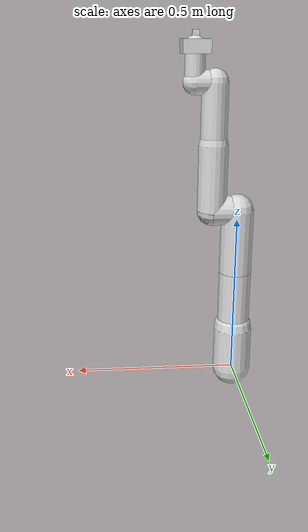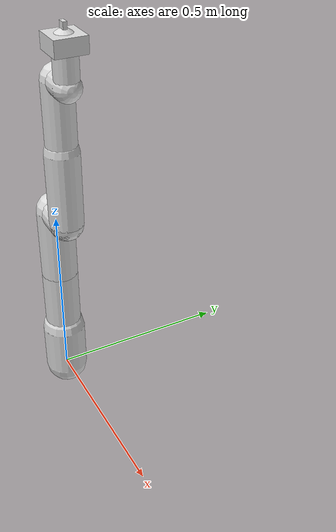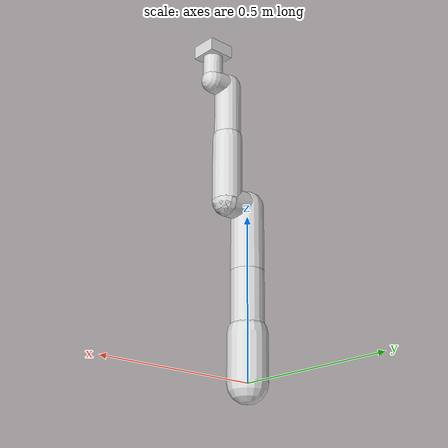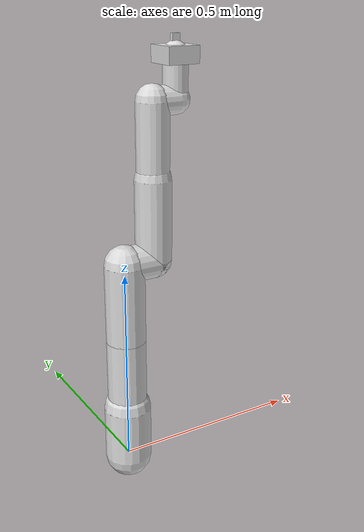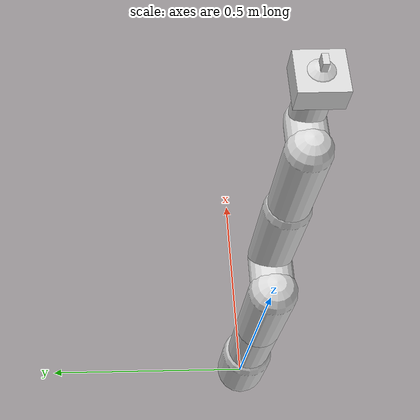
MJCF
<mujoco model="genelab_franka_panda">
  <option timestep="0.002" gravity="0 0 -9.81" integrator="implicitfast"/>
  <default>
    <joint armature="0.1" damping="0.5"/>
    <geom contype="0" conaffinity="0" rgba="0.85 0.85 0.85 1"/>
  </default>
  <worldbody>
    <body name="link0">
      <geom type="capsule" fromto="0 0 0 0 0 0.14" size="0.06"/>
      <body name="link1" pos="0 0 0.14">
        <joint name="panda_joint1" type="hinge" axis="0 0 1" range="-2.8973 2.8973"/>
        <geom type="capsule" fromto="0 0 0 0 0 0.19" size="0.05"/>
        <body name="link2" pos="0 0 0.19">
          <joint name="panda_joint2" type="hinge" axis="0 1 0" range="-1.7628 1.7628"/>
          <geom type="capsule" fromto="0 0 0 0 0 0.20" size="0.05"/>
          <body name="link3" pos="0 0 0.20">
            <joint name="panda_joint3" type="hinge" axis="0 0 1" range="-2.8973 2.8973"/>
            <geom type="capsule" fromto="0 0 0 0.08 0 0" size="0.045"/>
            <body name="link4" pos="0.08 0 0">
              <joint name="panda_joint4" type="hinge" axis="0 1 0" range="-3.0718 -0.0698"/>
              <geom type="capsule" fromto="0 0 0 0 0 0.20" size="0.045"/>
              <body name="link5" pos="0 0 0.20">
                <joint name="panda_joint5" type="hinge" axis="0 0 1" range="-2.8973 2.8973"/>
                <geom type="capsule" fromto="0 0 0 0 0 0.18" size="0.04"/>
                <body name="link6" pos="0 0 0.18">
                  <joint name="panda_joint6" type="hinge" axis="0 1 0" range="-0.0175 3.7525"/>
                  <geom type="capsule" fromto="0 0 0 0.06 0 0" size="0.035"/>
                  <body name="link7" pos="0.06 0 0">
                    <joint name="panda_joint7" type="hinge" axis="0 0 1" range="-2.8973 2.8973"/>
                    <geom type="capsule" fromto="0 0 0 0 0 0.10" size="0.03"/>
                    <body name="hand" pos="0 0 0.10">
                      <geom type="box" size="0.04 0.04 0.02"/>
                      <body name="finger_left" pos="0 0 0.02">
                        <joint name="panda_finger_joint1" type="slide" axis="0 1 0" range="0 0.04"/>
                        <geom type="box" size="0.01 0.005 0.025"/>
                      </body>
                      <body name="finger_right" pos="0 0 0.02">
                        <joint name="panda_finger_joint2" type="slide" axis="0 -1 0" range="0 0.04"/>
                        <geom type="box" size="0.01 0.005 0.025"/>
                      </body>
                    </body>
                  </body>
                </body>
              </body>
            </body>
          </body>
        </body>
      </body>
    </body>
  </worldbody>
  <actuator>
    <motor name="panda_joint1_motor" joint="panda_joint1" gear="1"/>
    <motor name="panda_joint2_motor" joint="panda_joint2" gear="1"/>
    <motor name="panda_joint3_motor" joint="panda_joint3" gear="1"/>
    <motor name="panda_joint4_motor" joint="panda_joint4" gear="1"/>
    <motor name="panda_joint5_motor" joint="panda_joint5" gear="1"/>
    <motor name="panda_joint6_motor" joint="panda_joint6" gear="1"/>
    <motor name="panda_joint7_motor" joint="panda_joint7" gear="1"/>
    <motor name="panda_finger_joint1_motor" joint="panda_finger_joint1" gear="1"/>
    <motor name="panda_finger_joint2_motor" joint="panda_finger_joint2" gear="1"/>
  </actuator>
</mujoco>
